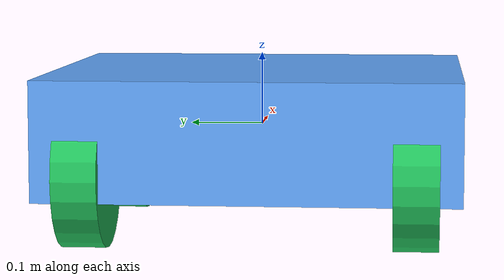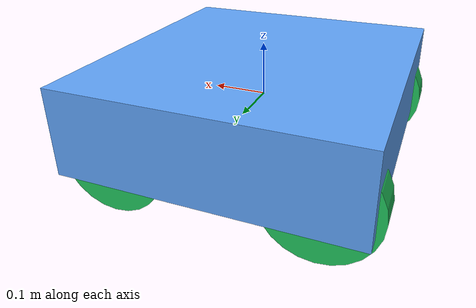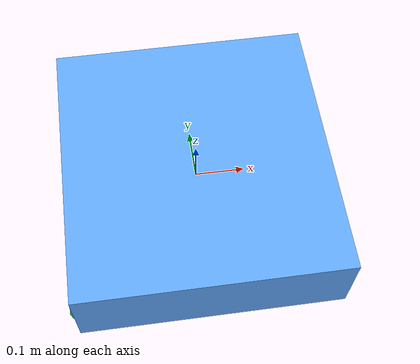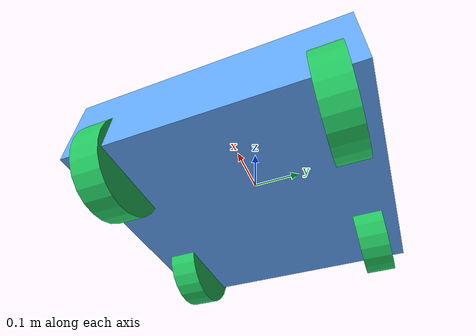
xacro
<?xml version="1.0"?>
<robot name="r2027_mecanum_robot" xmlns:xacro="http://www.ros.org/wiki/xacro">

  <!-- 驱动模式: true = planar_move 运动学全向(默认, 真正可横移);
       false = 物理 ros2_control 麦轮(ODE 无辊子各向异性摩擦, 横移会漂) -->
  <xacro:arg name="planar_drive" default="true"/>
  <xacro:property name="planar_drive" value="$(arg planar_drive)"/>
  <xacro:property name="wheel_mu"
                  value="${0.05 if planar_drive == 'true' else 1.0}"/>

  <!-- 底盘尺寸: 最初取自 stackforce URDF 建模器导出的 blank_robot.urdf (已归档删除),
       数值已固化于此, 直接改这里即可 -->
  <xacro:property name="body_length" value="0.53"/>
  <xacro:property name="body_width" value="0.56"/>
  <xacro:property name="body_height" value="0.16"/>
  <xacro:property name="base_mass" value="10.0"/>
  <xacro:property name="base_inertia_xx"
                  value="${base_mass * (body_width * body_width + body_height * body_height) / 12.0}"/>
  <xacro:property name="base_inertia_yy"
                  value="${base_mass * (body_length * body_length + body_height * body_height) / 12.0}"/>
  <xacro:property name="base_inertia_zz"
                  value="${base_mass * (body_length * body_length + body_width * body_width) / 12.0}"/>

  <xacro:property name="wheel_radius" value="0.1"/>
  <xacro:property name="wheel_width" value="0.06"/>
  <xacro:property name="wheel_mass" value="1.2"/>
  <xacro:property name="wheel_x_offset" value="0.18"/>
  <xacro:property name="wheel_y_offset" value="0.22"/>
  <xacro:property name="wheel_z_offset" value="-0.05"/>
  <xacro:property name="ground_clearance" value="${wheel_radius - wheel_z_offset}"/>

  <!-- Cylinder axis is Y after rotating the native Z-axis cylinder. -->
  <xacro:property name="wheel_inertia_xx_zz"
                  value="${wheel_mass * (3.0 * wheel_radius * wheel_radius + wheel_width * wheel_width) / 12.0}"/>
  <xacro:property name="wheel_inertia_yy"
                  value="${0.5 * wheel_mass * wheel_radius * wheel_radius}"/>

  <link name="base_link">
    <inertial>
      <origin xyz="0 0 0" rpy="0 0 0"/>
      <mass value="${base_mass}"/>
      <inertia ixx="${base_inertia_xx}" ixy="0.0" ixz="0.0"
               iyy="${base_inertia_yy}" iyz="0.0"
               izz="${base_inertia_zz}"/>
    </inertial>
    <visual name="base_link_visual">
      <origin xyz="0 0 0" rpy="0 0 0"/>
      <geometry>
        <box size="${body_length} ${body_width} ${body_height}"/>
      </geometry>
      <material name="body_blue">
        <color rgba="0.376471 0.647059 0.980392 1.0"/>
      </material>
    </visual>
    <collision name="base_link_collision">
      <origin xyz="0 0 0" rpy="0 0 0"/>
      <geometry>
        <box size="${body_length} ${body_width} ${body_height}"/>
      </geometry>
    </collision>
  </link>

  <!-- Ground-plane projection of base_link. It is a frame only, not a physics body. -->
  <link name="footprint_base_link"/>
  <joint name="base_link_to_footprint_base_link" type="fixed">
    <parent link="base_link"/>
    <child link="footprint_base_link"/>
    <origin xyz="0 0 ${-ground_clearance}" rpy="0 0 0"/>
  </joint>

  <xacro:macro name="mecanum_wheel" params="name x_sign y_sign">
    <link name="${name}_wheel_link">
      <inertial>
        <origin xyz="0 0 0" rpy="0 0 0"/>
        <mass value="${wheel_mass}"/>
        <inertia ixx="${wheel_inertia_xx_zz}" ixy="0.0" ixz="0.0"
                 iyy="${wheel_inertia_yy}" iyz="0.0"
                 izz="${wheel_inertia_xx_zz}"/>
      </inertial>
      <visual name="${name}_wheel_visual">
        <origin xyz="0 0 0" rpy="1.57079632679 0 0"/>
        <geometry>
          <cylinder radius="${wheel_radius}" length="${wheel_width}"/>
        </geometry>
        <material name="wheel_green">
          <color rgba="0.133333 0.772549 0.368627 1.0"/>
        </material>
      </visual>
      <collision name="${name}_wheel_collision">
        <origin xyz="0 0 0" rpy="1.57079632679 0 0"/>
        <geometry>
          <cylinder radius="${wheel_radius}" length="${wheel_width}"/>
        </geometry>
      </collision>
    </link>

    <joint name="${name}_wheel_joint" type="continuous">
      <parent link="base_link"/>
      <child link="${name}_wheel_link"/>
      <origin xyz="${x_sign * wheel_x_offset} ${y_sign * wheel_y_offset} ${wheel_z_offset}"
              rpy="0 0 0"/>
      <axis xyz="0 1 0"/>
      <limit effort="20.0" velocity="20.0"/>
      <dynamics damping="0.05" friction="0.01"/>
    </joint>
  </xacro:macro>

  <xacro:mecanum_wheel name="front_left" x_sign="1" y_sign="1"/>
  <xacro:mecanum_wheel name="front_right" x_sign="1" y_sign="-1"/>
  <xacro:mecanum_wheel name="rear_left" x_sign="-1" y_sign="1"/>
  <xacro:mecanum_wheel name="rear_right" x_sign="-1" y_sign="-1"/>

  <ros2_control name="GazeboSystem" type="system">
    <hardware>
      <plugin>gazebo_ros2_control/GazeboSystem</plugin>
    </hardware>
    <xacro:unless value="$(arg planar_drive)">
    <joint name="front_left_wheel_joint">
      <command_interface name="velocity">
        <param name="min">-20.0</param>
        <param name="max">20.0</param>
      </command_interface>
      <state_interface name="position"/>
      <state_interface name="velocity"/>
    </joint>
    <joint name="front_right_wheel_joint">
      <command_interface name="velocity">
        <param name="min">-20.0</param>
        <param name="max">20.0</param>
      </command_interface>
      <state_interface name="position"/>
      <state_interface name="velocity"/>
    </joint>
    <joint name="rear_left_wheel_joint">
      <command_interface name="velocity">
        <param name="min">-20.0</param>
        <param name="max">20.0</param>
      </command_interface>
      <state_interface name="position"/>
      <state_interface name="velocity"/>
    </joint>
    <joint name="rear_right_wheel_joint">
      <command_interface name="velocity">
        <param name="min">-20.0</param>
        <param name="max">20.0</param>
      </command_interface>
      <state_interface name="position"/>
      <state_interface name="velocity"/>
    </joint>
    </xacro:unless>
  </ros2_control>

  <gazebo reference="base_link">
    <material>Gazebo/Blue</material>
  </gazebo>

  <xacro:macro name="wheel_gazebo" params="name">
    <gazebo reference="${name}_wheel_link">
      <material>Gazebo/Green</material>
      <mu1>${wheel_mu}</mu1>
      <mu2>${wheel_mu}</mu2>
      <kp>1000000.0</kp>
      <kd>100.0</kd>
      <minDepth>0.001</minDepth>
      <maxVel>0.1</maxVel>
    </gazebo>
  </xacro:macro>
  <xacro:wheel_gazebo name="front_left"/>
  <xacro:wheel_gazebo name="front_right"/>
  <xacro:wheel_gazebo name="rear_left"/>
  <xacro:wheel_gazebo name="rear_right"/>

  <xacro:unless value="$(arg planar_drive)">
  <gazebo>
    <plugin filename="libgazebo_ros2_control.so" name="gazebo_ros2_control">
      <parameters>$(find r2027_robot_description)/config/controllers.yaml</parameters>
    </plugin>
  </gazebo>
  </xacro:unless>

  <xacro:if value="$(arg planar_drive)">
    <gazebo>
      <plugin filename="$(find r2027_robot_description)/../../lib/libgazebo_ros_gravity_planar_drive.so"
              name="planar_move">
        <update_rate>100</update_rate>
        <publish_rate>50</publish_rate>
        <cmd_vel>cmd_vel</cmd_vel>
        <odometry>odom</odometry>
        <odometry_frame>odom</odometry_frame>
        <robot_base_frame>base_link</robot_base_frame>
        <publish_odom>true</publish_odom>
        <publish_odom_tf>true</publish_odom_tf>
        <covariance_x>0.001</covariance_x>
        <covariance_y>0.001</covariance_y>
        <covariance_yaw>0.01</covariance_yaw>
      </plugin>
    </gazebo>
  </xacro:if>
</robot>
